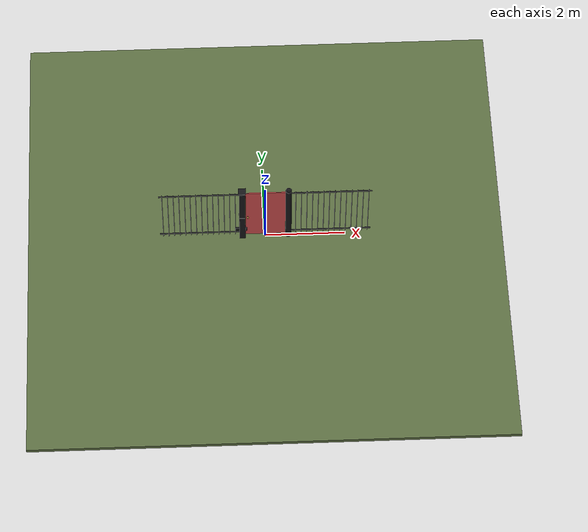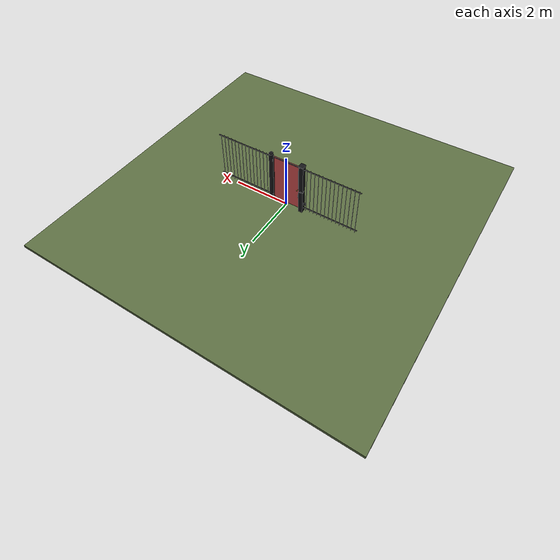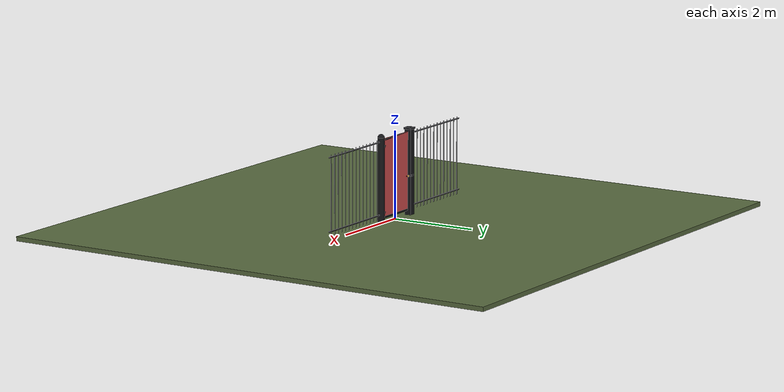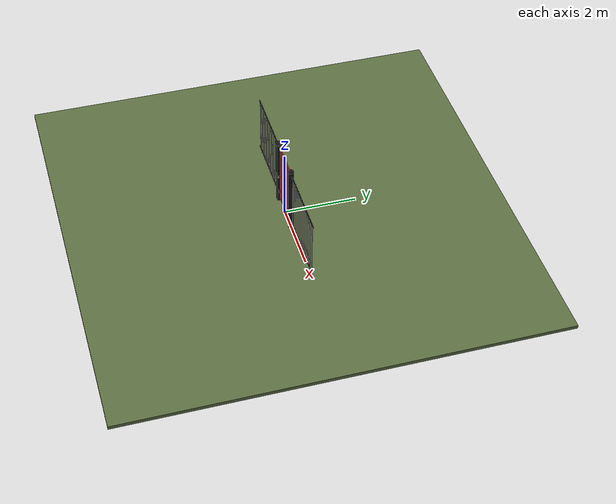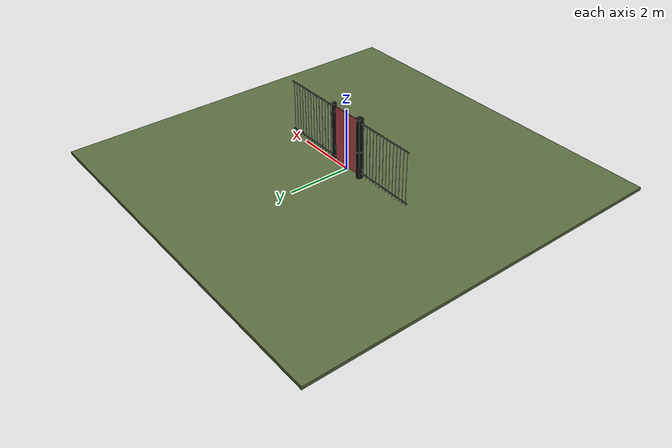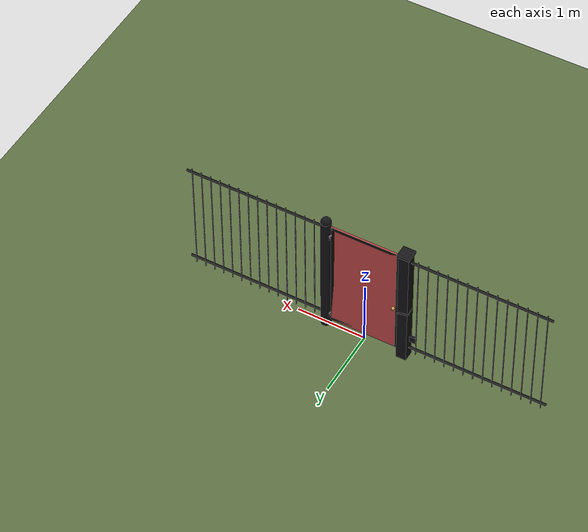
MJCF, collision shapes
<?xml version="1.0" ?>
<mujoco model="db0126_gate_swing_full">
  <compiler angle="radian" meshdir="../../hardware" texturedir="../../textures" autolimits="true" inertiafromgeom="false"/>
  <option timestep="0.002" integrator="implicitfast" cone="elliptic" impratio="10" noslip_iterations="3">
    <flag multiccd="enable"/>
  </option>
  <size memory="16M"/>
  <default>
    <geom condim="4" solref="0.005 1" solimp="0.95 0.99 0.001"/>
    <joint solreflimit="0.005 1" solimplimit="0.95 0.99 0.001"/>
    <tendon solreflimit="0.005 1"/>
    <equality solref="0.002 1"/>
  </default>
  <visual>
    <headlight ambient="0.4 0.4 0.4" diffuse="0.7 0.7 0.7" specular="0.2 0.2 0.2"/>
    <quality shadowsize="4096"/>
    <map znear="0.01" zfar="60"/>
  </visual>
  <asset>
    <mesh name="knob_d1888f6f03" file="knob_d1888f6f03.obj"/>
    <mesh name="strap_hinge_118b895b75" file="strap_hinge_118b895b75.obj"/>
    <material name="mat_floor" rgba="0.35 0.42 0.25 1" specular="0.2" shininess="0.15" reflectance="0"/>
    <material name="mat_wall" rgba="0.78 0.76 0.7 1" specular="0.2" shininess="0.1" reflectance="0"/>
    <material name="mat_leaf" rgba="0.04 0.04 0.04 1" specular="0.23" shininess="0.6" reflectance="0.02"/>
    <material name="mat_hinge" rgba="0.65 0.66 0.68 1" specular="0.74" shininess="0.5" reflectance="0.36"/>
    <material name="mat_op_brass" rgba="0.85 0.66 0.3 1" specular="0.8" shininess="0.75" reflectance="0.4"/>
    <material name="mat_trim" rgba="0.85 0.66 0.3 1" specular="0.8" shininess="0.75" reflectance="0.4"/>
    <material name="mat_bolt" rgba="0.75 0.76 0.77 1" specular="0.8" shininess="0.65" reflectance="0.4"/>
    <material name="mat_frame" rgba="0.08 0.08 0.09 1" specular="0.56" shininess="0.25" reflectance="0.24"/>
    <texture name="skybox" type="skybox" builtin="gradient" rgb1="0.6 0.7 0.85" rgb2="0.9 0.92 0.95" width="256" height="256"/>
  </asset>
  <worldbody>
    <light name="sun" pos="1.5 -2.5 4" dir="-0.3 0.5 -0.8" directional="true" diffuse="0.8 0.8 0.8" specular="0.3 0.3 0.3" castshadow="true"/>
    <light name="fill" pos="-1.5 2.5 3" dir="0.3 -0.5 -0.7" directional="true" diffuse="0.35 0.35 0.4" castshadow="false"/>
    <camera name="robot_view" pos="0 -2.33125 1.56275" xyaxes="1 0 0 0 0.26963 0.962964" fovy="52"/>
    <camera name="far_view" pos="0 2.33125 1.56275" xyaxes="-1 0 0 0 -0.26963 0.962964" fovy="52"/>
    <camera name="iso" pos="-1.77175 -1.95825 1.93575" xyaxes="0.741536 -0.670913 0 0.242917 0.268487 0.932151" fovy="46"/>
    <camera name="detail_handle" pos="-0.262 -0.859 1.18" xyaxes="0.97561 0.219512 0 -0.070934 0.315262 0.94635" fovy="38"/>
    <geom name="floor" type="box" size="6 6 0.05" pos="0 0 -0.05" material="mat_floor" group="0" contype="1" conaffinity="1" friction="0.8 0.005 0.0001" density="2400"/>
    <geom name="hinge_pintle_0" type="cylinder" size="0.008 0.02" pos="0.503 0.05 0.224" material="mat_hinge" group="1" contype="0" conaffinity="0" density="7850"/>
    <geom name="hinge_pintle_1" type="cylinder" size="0.008 0.02" pos="0.503 0.05 1.724" material="mat_hinge" group="1" contype="0" conaffinity="0" density="7850"/>
    <geom name="post_hinge" type="cylinder" size="0.075 0.975" pos="0.581 0 0.975" material="mat_frame" group="0" contype="1" conaffinity="1" friction="0.6 0.005 0.0001" density="800"/>
    <geom name="post_hinge_cap" type="sphere" size="0.075" pos="0.581 0 1.95" material="mat_frame" group="1" contype="0" conaffinity="0" density="800"/>
    <geom name="post_900_wall_n" type="box" size="0.075 0.03425 0.015" pos="-0.581 -0.04075 0.9" material="mat_frame" group="0" contype="1" conaffinity="1" friction="0.6 0.005 0.0001" density="800"/>
    <geom name="post_900_wall_p" type="box" size="0.075 0.008 0.015" pos="-0.581 0.0145 0.9" material="mat_frame" group="0" contype="1" conaffinity="1" friction="0.6 0.005 0.0001" density="800"/>
    <geom name="post_900_ramp" type="box" size="0.075 0.037018 0.015" pos="-0.586945 0.043555 0.9" quat="0.994802 0 0 0.101832" material="mat_frame" group="0" contype="1" conaffinity="1" friction="0.12 0.005 0.0001" density="800"/>
    <geom name="post_900_back" type="box" size="0.066 0.0065 0.015" pos="-0.59 0 0.9" material="mat_frame" group="0" contype="1" conaffinity="1" friction="0.6 0.005 0.0001" density="800"/>
    <geom name="post_latch_0" type="box" size="0.075 0.075 0.4425" pos="-0.581 0 0.4425" material="mat_frame" group="0" contype="1" conaffinity="1" friction="0.6 0.005 0.0001" density="800"/>
    <geom name="post_latch_1" type="box" size="0.075 0.075 0.5175" pos="-0.581 0 1.4325" material="mat_frame" group="0" contype="1" conaffinity="1" friction="0.6 0.005 0.0001" density="800"/>
    <geom name="post_latch_cap" type="box" size="0.09 0.09 0.02" pos="-0.581 0 1.97" material="mat_frame" group="1" contype="0" conaffinity="0" density="800"/>
    <geom name="gate_stop" type="box" size="0.02 0.012 0.06" pos="-0.486 -0.0245 0.35" material="mat_frame" group="0" contype="1" conaffinity="1" friction="0.6 0.005 0.0001" density="800"/>
    <geom name="fence_bar_l_0" type="cylinder" size="0.008 0.9" pos="-0.756 0 1" material="mat_frame" group="0" contype="1" conaffinity="1" friction="0.6 0.005 0.0001" density="7850"/>
    <geom name="fence_bar_l_1" type="cylinder" size="0.008 0.9" pos="-0.896 0 1" material="mat_frame" group="0" contype="1" conaffinity="1" friction="0.6 0.005 0.0001" density="7850"/>
    <geom name="fence_bar_l_2" type="cylinder" size="0.008 0.9" pos="-1.036 0 1" material="mat_frame" group="0" contype="1" conaffinity="1" friction="0.6 0.005 0.0001" density="7850"/>
    <geom name="fence_bar_l_3" type="cylinder" size="0.008 0.9" pos="-1.176 0 1" material="mat_frame" group="0" contype="1" conaffinity="1" friction="0.6 0.005 0.0001" density="7850"/>
    <geom name="fence_bar_l_4" type="cylinder" size="0.008 0.9" pos="-1.316 0 1" material="mat_frame" group="0" contype="1" conaffinity="1" friction="0.6 0.005 0.0001" density="7850"/>
    <geom name="fence_bar_l_5" type="cylinder" size="0.008 0.9" pos="-1.456 0 1" material="mat_frame" group="0" contype="1" conaffinity="1" friction="0.6 0.005 0.0001" density="7850"/>
    <geom name="fence_bar_l_6" type="cylinder" size="0.008 0.9" pos="-1.596 0 1" material="mat_frame" group="0" contype="1" conaffinity="1" friction="0.6 0.005 0.0001" density="7850"/>
    <geom name="fence_bar_l_7" type="cylinder" size="0.008 0.9" pos="-1.736 0 1" material="mat_frame" group="0" contype="1" conaffinity="1" friction="0.6 0.005 0.0001" density="7850"/>
    <geom name="fence_bar_l_8" type="cylinder" size="0.008 0.9" pos="-1.876 0 1" material="mat_frame" group="0" contype="1" conaffinity="1" friction="0.6 0.005 0.0001" density="7850"/>
    <geom name="fence_bar_l_9" type="cylinder" size="0.008 0.9" pos="-2.016 0 1" material="mat_frame" group="0" contype="1" conaffinity="1" friction="0.6 0.005 0.0001" density="7850"/>
    <geom name="fence_bar_l_10" type="cylinder" size="0.008 0.9" pos="-2.156 0 1" material="mat_frame" group="0" contype="1" conaffinity="1" friction="0.6 0.005 0.0001" density="7850"/>
    <geom name="fence_bar_l_11" type="cylinder" size="0.008 0.9" pos="-2.296 0 1" material="mat_frame" group="0" contype="1" conaffinity="1" friction="0.6 0.005 0.0001" density="7850"/>
    <geom name="fence_bar_l_12" type="cylinder" size="0.008 0.9" pos="-2.436 0 1" material="mat_frame" group="0" contype="1" conaffinity="1" friction="0.6 0.005 0.0001" density="7850"/>
    <geom name="fence_bar_l_13" type="cylinder" size="0.008 0.9" pos="-2.576 0 1" material="mat_frame" group="0" contype="1" conaffinity="1" friction="0.6 0.005 0.0001" density="7850"/>
    <geom name="fence_rail_l" type="box" size="1 0.012 0.012" pos="-1.656 0 1.85" material="mat_frame" group="0" contype="1" conaffinity="1" friction="0.6 0.005 0.0001" density="7850"/>
    <geom name="fence_rail_b_l" type="box" size="1 0.012 0.012" pos="-1.656 0 0.2" material="mat_frame" group="0" contype="1" conaffinity="1" friction="0.6 0.005 0.0001" density="7850"/>
    <geom name="fence_bar_r_0" type="cylinder" size="0.008 0.9" pos="0.756 0 1" material="mat_frame" group="0" contype="1" conaffinity="1" friction="0.6 0.005 0.0001" density="7850"/>
    <geom name="fence_bar_r_1" type="cylinder" size="0.008 0.9" pos="0.896 0 1" material="mat_frame" group="0" contype="1" conaffinity="1" friction="0.6 0.005 0.0001" density="7850"/>
    <geom name="fence_bar_r_2" type="cylinder" size="0.008 0.9" pos="1.036 0 1" material="mat_frame" group="0" contype="1" conaffinity="1" friction="0.6 0.005 0.0001" density="7850"/>
    <geom name="fence_bar_r_3" type="cylinder" size="0.008 0.9" pos="1.176 0 1" material="mat_frame" group="0" contype="1" conaffinity="1" friction="0.6 0.005 0.0001" density="7850"/>
    <geom name="fence_bar_r_4" type="cylinder" size="0.008 0.9" pos="1.316 0 1" material="mat_frame" group="0" contype="1" conaffinity="1" friction="0.6 0.005 0.0001" density="7850"/>
    <geom name="fence_bar_r_5" type="cylinder" size="0.008 0.9" pos="1.456 0 1" material="mat_frame" group="0" contype="1" conaffinity="1" friction="0.6 0.005 0.0001" density="7850"/>
    <geom name="fence_bar_r_6" type="cylinder" size="0.008 0.9" pos="1.596 0 1" material="mat_frame" group="0" contype="1" conaffinity="1" friction="0.6 0.005 0.0001" density="7850"/>
    <geom name="fence_bar_r_7" type="cylinder" size="0.008 0.9" pos="1.736 0 1" material="mat_frame" group="0" contype="1" conaffinity="1" friction="0.6 0.005 0.0001" density="7850"/>
    <geom name="fence_bar_r_8" type="cylinder" size="0.008 0.9" pos="1.876 0 1" material="mat_frame" group="0" contype="1" conaffinity="1" friction="0.6 0.005 0.0001" density="7850"/>
    <geom name="fence_bar_r_9" type="cylinder" size="0.008 0.9" pos="2.016 0 1" material="mat_frame" group="0" contype="1" conaffinity="1" friction="0.6 0.005 0.0001" density="7850"/>
    <geom name="fence_bar_r_10" type="cylinder" size="0.008 0.9" pos="2.156 0 1" material="mat_frame" group="0" contype="1" conaffinity="1" friction="0.6 0.005 0.0001" density="7850"/>
    <geom name="fence_bar_r_11" type="cylinder" size="0.008 0.9" pos="2.296 0 1" material="mat_frame" group="0" contype="1" conaffinity="1" friction="0.6 0.005 0.0001" density="7850"/>
    <geom name="fence_bar_r_12" type="cylinder" size="0.008 0.9" pos="2.436 0 1" material="mat_frame" group="0" contype="1" conaffinity="1" friction="0.6 0.005 0.0001" density="7850"/>
    <geom name="fence_bar_r_13" type="cylinder" size="0.008 0.9" pos="2.576 0 1" material="mat_frame" group="0" contype="1" conaffinity="1" friction="0.6 0.005 0.0001" density="7850"/>
    <geom name="fence_rail_r" type="box" size="1 0.012 0.012" pos="1.656 0 1.85" material="mat_frame" group="0" contype="1" conaffinity="1" friction="0.6 0.005 0.0001" density="7850"/>
    <geom name="fence_rail_b_r" type="box" size="1 0.012 0.012" pos="1.656 0 0.2" material="mat_frame" group="0" contype="1" conaffinity="1" friction="0.6 0.005 0.0001" density="7850"/>
    <geom name="gate_stop_strap_0" type="box" size="0.1215 0.01505 0.048" pos="-0.627 -0.01905 0.35" material="mat_frame" group="1" contype="0" conaffinity="0" density="7850"/>
    <site name="approach_point" pos="0 -1.5 0" quat="1 0 0 0" size="0.05" rgba="0.2 0.9 0.2 0.5" group="4"/>
    <site name="goal_point" pos="0 1.5 0" quat="1 0 0 0" size="0.05" rgba="0.2 0.9 0.2 0.5" group="4"/>
    <site name="door_plane_center" pos="0 0 0.91" quat="1 0 0 0" size="0.02" rgba="0.2 0.9 0.2 0.5" group="4"/>
    <body name="leaf" pos="0.506 0 0">
      <inertial pos="-0.480881 0.001507 0.999981" mass="55.017768" quat="0.498858 0.501163 -0.498834 0.50114" diaginertia="4.606574274 16.270920563 20.869178453"/>
      <joint name="leaf_hinge" type="hinge" axis="0 0 -1" pos="-0.003 0.05 0" limited="true" range="0 1.570796" damping="0.37508" frictionloss="27.049296" armature="0.02"/>
      <geom name="leaf_slab_col" type="box" size="0.5 0.0125 0.9" pos="-0.503 0 1" material="mat_leaf" group="3" contype="1" conaffinity="1" rgba="0.8 0.3 0.3 0.25" friction="0.45 0.005 0.0001" density="1"/>
      <geom name="leaf_rail_b" type="box" size="0.5 0.0125 0.0225" pos="-0.503 0 0.1225" material="mat_leaf" group="1" contype="0" conaffinity="0" density="1"/>
      <geom name="leaf_rail_t" type="box" size="0.5 0.0125 0.0225" pos="-0.503 0 1.8775" material="mat_leaf" group="1" contype="0" conaffinity="0" density="1"/>
      <geom name="leaf_stile_h" type="box" size="0.0225 0.0125 0.9" pos="-0.0255 0 1" material="mat_leaf" group="1" contype="0" conaffinity="0" density="1"/>
      <geom name="leaf_stile_l" type="box" size="0.0225 0.0125 0.9" pos="-0.9805 0 1" material="mat_leaf" group="1" contype="0" conaffinity="0" density="1"/>
      <geom name="leaf_bar_0" type="cylinder" size="0.0095 0.855" pos="-0.113 0 1" material="mat_leaf" group="1" contype="0" conaffinity="0" density="1"/>
      <geom name="leaf_bar_1" type="cylinder" size="0.0095 0.855" pos="-0.243 0 1" material="mat_leaf" group="1" contype="0" conaffinity="0" density="1"/>
      <geom name="leaf_bar_2" type="cylinder" size="0.0095 0.855" pos="-0.373 0 1" material="mat_leaf" group="1" contype="0" conaffinity="0" density="1"/>
      <geom name="leaf_bar_3" type="cylinder" size="0.0095 0.855" pos="-0.503 0 1" material="mat_leaf" group="1" contype="0" conaffinity="0" density="1"/>
      <geom name="leaf_bar_4" type="cylinder" size="0.0095 0.855" pos="-0.633 0 1" material="mat_leaf" group="1" contype="0" conaffinity="0" density="1"/>
      <geom name="leaf_bar_5" type="cylinder" size="0.0095 0.855" pos="-0.763 0 1" material="mat_leaf" group="1" contype="0" conaffinity="0" density="1"/>
      <geom name="leaf_bar_6" type="cylinder" size="0.0095 0.855" pos="-0.893 0 1" material="mat_leaf" group="1" contype="0" conaffinity="0" density="1"/>
      <geom name="hinge_strap_0" type="mesh" mesh="strap_hinge_118b895b75" pos="-0.003 0.0155 0.25" quat="0 0 0 1" material="mat_hinge" group="1" contype="0" conaffinity="0" density="7850"/>
      <geom name="hinge_strap_eye_0" type="cylinder" size="0.011 0.012" pos="-0.003 0.05 0.25" material="mat_hinge" group="1" contype="0" conaffinity="0" density="7850"/>
      <geom name="hinge_strap_neck_0" type="box" size="0.012 0.02125 0.006" pos="-0.003 0.03275 0.25" material="mat_hinge" group="1" contype="0" conaffinity="0" density="7850"/>
      <geom name="hinge_strap_1" type="mesh" mesh="strap_hinge_118b895b75" pos="-0.003 0.0155 1.75" quat="0 0 0 1" material="mat_hinge" group="1" contype="0" conaffinity="0" density="7850"/>
      <geom name="hinge_strap_eye_1" type="cylinder" size="0.011 0.012" pos="-0.003 0.05 1.75" material="mat_hinge" group="1" contype="0" conaffinity="0" density="7850"/>
      <geom name="hinge_strap_neck_1" type="box" size="0.012 0.02125 0.006" pos="-0.003 0.03275 1.75" material="mat_hinge" group="1" contype="0" conaffinity="0" density="7850"/>
      <geom name="leaf_latch_bolt_faceplate" type="box" size="0.0006 0.0105 0.025" pos="-1.0024 0 0.9" material="mat_bolt" group="1" contype="0" conaffinity="0" density="8500"/>
      <site name="leaf_edge_mid" pos="-1.003 0 0.9" quat="1 0 0 0" size="0.02" rgba="0.2 0.9 0.2 0.5" group="4"/>
      <body name="leaf_handle" pos="-0.948 0 0.9">
        <inertial pos="0 0 0" mass="1.135083" quat="0.5 0.5 0.5 0.5" diaginertia="0.00031221 0.003140271 0.003140271"/>
        <joint name="leaf_handle_hinge" type="hinge" axis="0 1 0" limited="true" range="0 0.87" damping="0.143612" frictionloss="0.038" stiffness="0.5" springref="-0.5" armature="0.01"/>
        <geom name="leaf_handle_spindle" type="cylinder" size="0.006 0.0205" pos="0 0 0" quat="0.707107 -0.707107 0 0" material="mat_op_brass" group="1" contype="0" conaffinity="0" density="7850"/>
        <geom name="leaf_handle_knob_n" type="mesh" mesh="knob_d1888f6f03" pos="0 -0.0125 0" quat="0 0 -0.707107 0.707107" material="mat_op_brass" group="1" contype="0" conaffinity="0" density="3000"/>
        <geom name="leaf_handle_knob_col_n" type="sphere" size="0.0243" pos="0 -0.059 0" material="mat_op_brass" group="0" contype="1" conaffinity="1" friction="0.9 0.01 0.0001" density="3000"/>
        <geom name="leaf_handle_knob_neck_n" type="cylinder" size="0.011 0.012" pos="0 -0.0245 0" quat="0.707107 -0.707107 0 0" material="mat_op_brass" group="3" contype="1" conaffinity="1" rgba="0.8 0.3 0.3 0.25" friction="0.6 0.005 0.0001" density="3000"/>
        <geom name="leaf_handle_knob_p" type="mesh" mesh="knob_d1888f6f03" pos="0 0.0125 0" quat="0 0 0.707107 0.707107" material="mat_op_brass" group="1" contype="0" conaffinity="0" density="3000"/>
        <geom name="leaf_handle_knob_col_p" type="sphere" size="0.0243" pos="0 0.059 0" material="mat_op_brass" group="0" contype="1" conaffinity="1" friction="0.9 0.01 0.0001" density="3000"/>
        <geom name="leaf_handle_knob_neck_p" type="cylinder" size="0.011 0.012" pos="0 0.0245 0" quat="0.707107 -0.707107 0 0" material="mat_op_brass" group="3" contype="1" conaffinity="1" rgba="0.8 0.3 0.3 0.25" friction="0.6 0.005 0.0001" density="3000"/>
        <site name="leaf_handle_grip_n" pos="0 -0.059 0" quat="1 0 0 0" size="0.012" rgba="0.2 0.9 0.2 0.5" group="4"/>
        <site name="leaf_handle_grip_p" pos="0 0.059 0" quat="1 0 0 0" size="0.012" rgba="0.2 0.9 0.2 0.5" group="4"/>
      </body>
      <body name="leaf_latch_bolt" pos="-1.003 0 0.9">
        <inertial pos="0.008 0 0" mass="0.027149" quat="0 0 -0.707107 0.707107" diaginertia="0.000000328 0.000003943 0.000003943"/>
        <joint name="leaf_latch_bolt_slide" type="slide" axis="1 0 0" limited="true" range="0 0.014" damping="2" frictionloss="0.3" stiffness="400" springref="-0.01" armature="0.1"/>
        <geom name="leaf_latch_bolt_capsule" type="capsule" size="0.005 0.017" pos="0.008 0 0" quat="0.707107 0 -0.707107 0" material="mat_bolt" group="0" contype="1" conaffinity="1" friction="0.2 0.005 0.0001" density="8500"/>
      </body>
    </body>
  </worldbody>
  <tendon>
    <fixed name="leaf_latch_bolt_coupling" limited="true" range="0 10">
      <joint joint="leaf_latch_bolt_slide" coef="1"/>
      <joint joint="leaf_handle_hinge" coef="-0.017284"/>
    </fixed>
  </tendon>
  <sensor>
    <jointpos name="leaf_hinge_pos" joint="leaf_hinge"/>
    <jointvel name="leaf_hinge_vel" joint="leaf_hinge"/>
    <jointpos name="leaf_handle_hinge_pos" joint="leaf_handle_hinge"/>
    <jointvel name="leaf_handle_hinge_vel" joint="leaf_handle_hinge"/>
    <jointpos name="leaf_latch_bolt_slide_pos" joint="leaf_latch_bolt_slide"/>
    <jointvel name="leaf_latch_bolt_slide_vel" joint="leaf_latch_bolt_slide"/>
  </sensor>
</mujoco>
